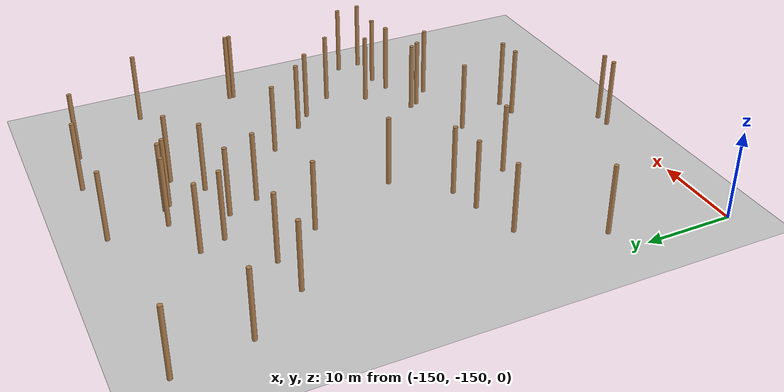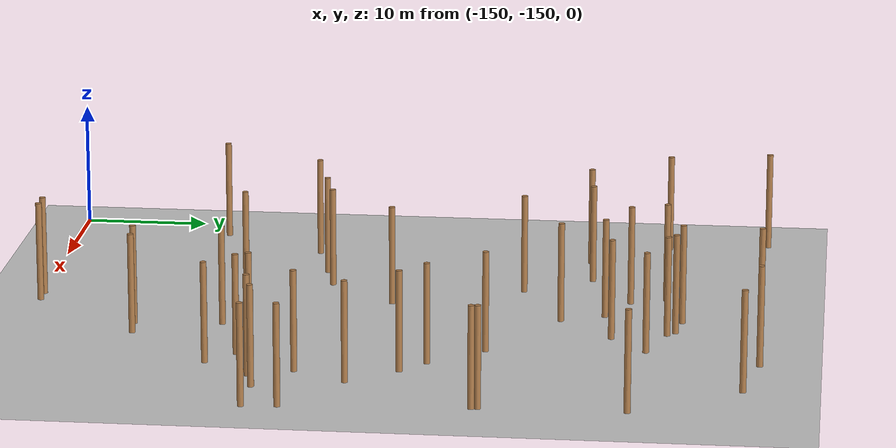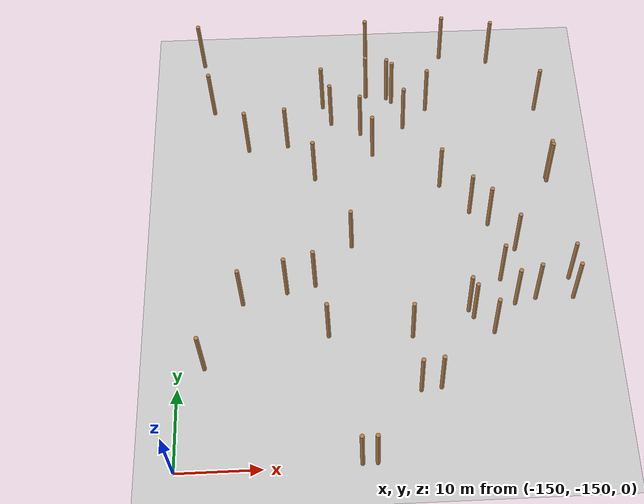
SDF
<sdf version="1.5">
 <world name="padure_tactica">
  <include><uri>model://sun</uri></include>
  <include><uri>model://ground_plane</uri></include>
  <model name="tree_22">
   <static>true</static>
   <pose>-142.58 -129.13 4.0 0 0 0</pose>
   <link name="link">
    <collision name="collision">
     <geometry><cylinder><radius>0.25</radius><length>8.0</length></cylinder></geometry>
    </collision>
    <visual name="visual">
     <geometry><cylinder><radius>0.25</radius><length>8.0</length></cylinder></geometry>
     <material>
      <script><uri>file://media/materials/scripts/gazebo.material</uri><name>Gazebo/Wood</name></script>
     </material>
    </visual>
   </link>
  </model>
  <model name="tree_45">
   <static>true</static>
   <pose>-132.42 -133.86 4.0 0 0 0</pose>
   <link name="link">
    <collision name="collision">
     <geometry><cylinder><radius>0.25</radius><length>8.0</length></cylinder></geometry>
    </collision>
    <visual name="visual">
     <geometry><cylinder><radius>0.25</radius><length>8.0</length></cylinder></geometry>
     <material>
      <script><uri>file://media/materials/scripts/gazebo.material</uri><name>Gazebo/Wood</name></script>
     </material>
    </visual>
   </link>
  </model>
  <model name="tree_58">
   <static>true</static>
   <pose>-107.53 -129.84 4.0 0 0 0</pose>
   <link name="link">
    <collision name="collision">
     <geometry><cylinder><radius>0.25</radius><length>8.0</length></cylinder></geometry>
    </collision>
    <visual name="visual">
     <geometry><cylinder><radius>0.25</radius><length>8.0</length></cylinder></geometry>
     <material>
      <script><uri>file://media/materials/scripts/gazebo.material</uri><name>Gazebo/Wood</name></script>
     </material>
    </visual>
   </link>
  </model>
  <model name="tree_72">
   <static>true</static>
   <pose>-123.33 -99.41 4.0 0 0 0</pose>
   <link name="link">
    <collision name="collision">
     <geometry><cylinder><radius>0.25</radius><length>8.0</length></cylinder></geometry>
    </collision>
    <visual name="visual">
     <geometry><cylinder><radius>0.25</radius><length>8.0</length></cylinder></geometry>
     <material>
      <script><uri>file://media/materials/scripts/gazebo.material</uri><name>Gazebo/Wood</name></script>
     </material>
    </visual>
   </link>
  </model>
  <model name="tree_81">
   <static>true</static>
   <pose>-115.68 -131.15 4.0 0 0 0</pose>
   <link name="link">
    <collision name="collision">
     <geometry><cylinder><radius>0.25</radius><length>8.0</length></cylinder></geometry>
    </collision>
    <visual name="visual">
     <geometry><cylinder><radius>0.25</radius><length>8.0</length></cylinder></geometry>
     <material>
      <script><uri>file://media/materials/scripts/gazebo.material</uri><name>Gazebo/Wood</name></script>
     </material>
    </visual>
   </link>
  </model>
  <model name="tree_100">
   <static>true</static>
   <pose>-122.54 -134.30 4.0 0 0 0</pose>
   <link name="link">
    <collision name="collision">
     <geometry><cylinder><radius>0.25</radius><length>8.0</length></cylinder></geometry>
    </collision>
    <visual name="visual">
     <geometry><cylinder><radius>0.25</radius><length>8.0</length></cylinder></geometry>
     <material>
      <script><uri>file://media/materials/scripts/gazebo.material</uri><name>Gazebo/Wood</name></script>
     </material>
    </visual>
   </link>
  </model>
  <model name="tree_202">
   <static>true</static>
   <pose>-122.04 -103.68 4.0 0 0 0</pose>
   <link name="link">
    <collision name="collision">
     <geometry><cylinder><radius>0.25</radius><length>8.0</length></cylinder></geometry>
    </collision>
    <visual name="visual">
     <geometry><cylinder><radius>0.25</radius><length>8.0</length></cylinder></geometry>
     <material>
      <script><uri>file://media/materials/scripts/gazebo.material</uri><name>Gazebo/Wood</name></script>
     </material>
    </visual>
   </link>
  </model>
  <model name="tree_204">
   <static>true</static>
   <pose>-117.88 -113.12 4.0 0 0 0</pose>
   <link name="link">
    <collision name="collision">
     <geometry><cylinder><radius>0.25</radius><length>8.0</length></cylinder></geometry>
    </collision>
    <visual name="visual">
     <geometry><cylinder><radius>0.25</radius><length>8.0</length></cylinder></geometry>
     <material>
      <script><uri>file://media/materials/scripts/gazebo.material</uri><name>Gazebo/Wood</name></script>
     </material>
    </visual>
   </link>
  </model>
  <model name="tree_260">
   <static>true</static>
   <pose>-146.66 -100.29 4.0 0 0 0</pose>
   <link name="link">
    <collision name="collision">
     <geometry><cylinder><radius>0.25</radius><length>8.0</length></cylinder></geometry>
    </collision>
    <visual name="visual">
     <geometry><cylinder><radius>0.25</radius><length>8.0</length></cylinder></geometry>
     <material>
      <script><uri>file://media/materials/scripts/gazebo.material</uri><name>Gazebo/Wood</name></script>
     </material>
    </visual>
   </link>
  </model>
  <model name="tree_269">
   <static>true</static>
   <pose>-126.65 -98.38 4.0 0 0 0</pose>
   <link name="link">
    <collision name="collision">
     <geometry><cylinder><radius>0.25</radius><length>8.0</length></cylinder></geometry>
    </collision>
    <visual name="visual">
     <geometry><cylinder><radius>0.25</radius><length>8.0</length></cylinder></geometry>
     <material>
      <script><uri>file://media/materials/scripts/gazebo.material</uri><name>Gazebo/Wood</name></script>
     </material>
    </visual>
   </link>
  </model>
  <model name="tree_348">
   <static>true</static>
   <pose>-137.29 -127.82 4.0 0 0 0</pose>
   <link name="link">
    <collision name="collision">
     <geometry><cylinder><radius>0.25</radius><length>8.0</length></cylinder></geometry>
    </collision>
    <visual name="visual">
     <geometry><cylinder><radius>0.25</radius><length>8.0</length></cylinder></geometry>
     <material>
      <script><uri>file://media/materials/scripts/gazebo.material</uri><name>Gazebo/Wood</name></script>
     </material>
    </visual>
   </link>
  </model>
  <model name="tree_358">
   <static>true</static>
   <pose>-114.44 -117.29 4.0 0 0 0</pose>
   <link name="link">
    <collision name="collision">
     <geometry><cylinder><radius>0.25</radius><length>8.0</length></cylinder></geometry>
    </collision>
    <visual name="visual">
     <geometry><cylinder><radius>0.25</radius><length>8.0</length></cylinder></geometry>
     <material>
      <script><uri>file://media/materials/scripts/gazebo.material</uri><name>Gazebo/Wood</name></script>
     </material>
    </visual>
   </link>
  </model>
  <model name="tree_375">
   <static>true</static>
   <pose>-103.20 -127.24 4.0 0 0 0</pose>
   <link name="link">
    <collision name="collision">
     <geometry><cylinder><radius>0.25</radius><length>8.0</length></cylinder></geometry>
    </collision>
    <visual name="visual">
     <geometry><cylinder><radius>0.25</radius><length>8.0</length></cylinder></geometry>
     <material>
      <script><uri>file://media/materials/scripts/gazebo.material</uri><name>Gazebo/Wood</name></script>
     </material>
    </visual>
   </link>
  </model>
  <model name="tree_397">
   <static>true</static>
   <pose>-119.63 -140.98 4.0 0 0 0</pose>
   <link name="link">
    <collision name="collision">
     <geometry><cylinder><radius>0.25</radius><length>8.0</length></cylinder></geometry>
    </collision>
    <visual name="visual">
     <geometry><cylinder><radius>0.25</radius><length>8.0</length></cylinder></geometry>
     <material>
      <script><uri>file://media/materials/scripts/gazebo.material</uri><name>Gazebo/Wood</name></script>
     </material>
    </visual>
   </link>
  </model>
  <model name="tree_403">
   <static>true</static>
   <pose>-121.98 -141.22 4.0 0 0 0</pose>
   <link name="link">
    <collision name="collision">
     <geometry><cylinder><radius>0.25</radius><length>8.0</length></cylinder></geometry>
    </collision>
    <visual name="visual">
     <geometry><cylinder><radius>0.25</radius><length>8.0</length></cylinder></geometry>
     <material>
      <script><uri>file://media/materials/scripts/gazebo.material</uri><name>Gazebo/Wood</name></script>
     </material>
    </visual>
   </link>
  </model>
  <model name="tree_419">
   <static>true</static>
   <pose>-112.88 -134.19 4.0 0 0 0</pose>
   <link name="link">
    <collision name="collision">
     <geometry><cylinder><radius>0.25</radius><length>8.0</length></cylinder></geometry>
    </collision>
    <visual name="visual">
     <geometry><cylinder><radius>0.25</radius><length>8.0</length></cylinder></geometry>
     <material>
      <script><uri>file://media/materials/scripts/gazebo.material</uri><name>Gazebo/Wood</name></script>
     </material>
    </visual>
   </link>
  </model>
  <model name="tree_433">
   <static>true</static>
   <pose>-104.26 -112.46 4.0 0 0 0</pose>
   <link name="link">
    <collision name="collision">
     <geometry><cylinder><radius>0.25</radius><length>8.0</length></cylinder></geometry>
    </collision>
    <visual name="visual">
     <geometry><cylinder><radius>0.25</radius><length>8.0</length></cylinder></geometry>
     <material>
      <script><uri>file://media/materials/scripts/gazebo.material</uri><name>Gazebo/Wood</name></script>
     </material>
    </visual>
   </link>
  </model>
  <model name="tree_448">
   <static>true</static>
   <pose>-112.30 -119.17 4.0 0 0 0</pose>
   <link name="link">
    <collision name="collision">
     <geometry><cylinder><radius>0.25</radius><length>8.0</length></cylinder></geometry>
    </collision>
    <visual name="visual">
     <geometry><cylinder><radius>0.25</radius><length>8.0</length></cylinder></geometry>
     <material>
      <script><uri>file://media/materials/scripts/gazebo.material</uri><name>Gazebo/Wood</name></script>
     </material>
    </visual>
   </link>
  </model>
  <model name="tree_500">
   <static>true</static>
   <pose>-104.19 -112.94 4.0 0 0 0</pose>
   <link name="link">
    <collision name="collision">
     <geometry><cylinder><radius>0.25</radius><length>8.0</length></cylinder></geometry>
    </collision>
    <visual name="visual">
     <geometry><cylinder><radius>0.25</radius><length>8.0</length></cylinder></geometry>
     <material>
      <script><uri>file://media/materials/scripts/gazebo.material</uri><name>Gazebo/Wood</name></script>
     </material>
    </visual>
   </link>
  </model>
  <model name="tree_548">
   <static>true</static>
   <pose>-127.36 -149.76 4.0 0 0 0</pose>
   <link name="link">
    <collision name="collision">
     <geometry><cylinder><radius>0.25</radius><length>8.0</length></cylinder></geometry>
    </collision>
    <visual name="visual">
     <geometry><cylinder><radius>0.25</radius><length>8.0</length></cylinder></geometry>
     <material>
      <script><uri>file://media/materials/scripts/gazebo.material</uri><name>Gazebo/Wood</name></script>
     </material>
    </visual>
   </link>
  </model>
  <model name="tree_552">
   <static>true</static>
   <pose>-148.22 -92.18 4.0 0 0 0</pose>
   <link name="link">
    <collision name="collision">
     <geometry><cylinder><radius>0.25</radius><length>8.0</length></cylinder></geometry>
    </collision>
    <visual name="visual">
     <geometry><cylinder><radius>0.25</radius><length>8.0</length></cylinder></geometry>
     <material>
      <script><uri>file://media/materials/scripts/gazebo.material</uri><name>Gazebo/Wood</name></script>
     </material>
    </visual>
   </link>
  </model>
  <model name="tree_574">
   <static>true</static>
   <pose>-109.31 -122.97 4.0 0 0 0</pose>
   <link name="link">
    <collision name="collision">
     <geometry><cylinder><radius>0.25</radius><length>8.0</length></cylinder></geometry>
    </collision>
    <visual name="visual">
     <geometry><cylinder><radius>0.25</radius><length>8.0</length></cylinder></geometry>
     <material>
      <script><uri>file://media/materials/scripts/gazebo.material</uri><name>Gazebo/Wood</name></script>
     </material>
    </visual>
   </link>
  </model>
  <model name="tree_590">
   <static>true</static>
   <pose>-111.50 -127.12 4.0 0 0 0</pose>
   <link name="link">
    <collision name="collision">
     <geometry><cylinder><radius>0.25</radius><length>8.0</length></cylinder></geometry>
    </collision>
    <visual name="visual">
     <geometry><cylinder><radius>0.25</radius><length>8.0</length></cylinder></geometry>
     <material>
      <script><uri>file://media/materials/scripts/gazebo.material</uri><name>Gazebo/Wood</name></script>
     </material>
    </visual>
   </link>
  </model>
  <model name="tree_729">
   <static>true</static>
   <pose>-146.93 -137.45 4.0 0 0 0</pose>
   <link name="link">
    <collision name="collision">
     <geometry><cylinder><radius>0.25</radius><length>8.0</length></cylinder></geometry>
    </collision>
    <visual name="visual">
     <geometry><cylinder><radius>0.25</radius><length>8.0</length></cylinder></geometry>
     <material>
      <script><uri>file://media/materials/scripts/gazebo.material</uri><name>Gazebo/Wood</name></script>
     </material>
    </visual>
   </link>
  </model>
  <model name="tree_735">
   <static>true</static>
   <pose>-104.51 -101.43 4.0 0 0 0</pose>
   <link name="link">
    <collision name="collision">
     <geometry><cylinder><radius>0.25</radius><length>8.0</length></cylinder></geometry>
    </collision>
    <visual name="visual">
     <geometry><cylinder><radius>0.25</radius><length>8.0</length></cylinder></geometry>
     <material>
      <script><uri>file://media/materials/scripts/gazebo.material</uri><name>Gazebo/Wood</name></script>
     </material>
    </visual>
   </link>
  </model>
  <model name="tree_794">
   <static>true</static>
   <pose>-127.60 -104.52 4.0 0 0 0</pose>
   <link name="link">
    <collision name="collision">
     <geometry><cylinder><radius>0.25</radius><length>8.0</length></cylinder></geometry>
    </collision>
    <visual name="visual">
     <geometry><cylinder><radius>0.25</radius><length>8.0</length></cylinder></geometry>
     <material>
      <script><uri>file://media/materials/scripts/gazebo.material</uri><name>Gazebo/Wood</name></script>
     </material>
    </visual>
   </link>
  </model>
  <model name="tree_797">
   <static>true</static>
   <pose>-110.06 -130.48 4.0 0 0 0</pose>
   <link name="link">
    <collision name="collision">
     <geometry><cylinder><radius>0.25</radius><length>8.0</length></cylinder></geometry>
    </collision>
    <visual name="visual">
     <geometry><cylinder><radius>0.25</radius><length>8.0</length></cylinder></geometry>
     <material>
      <script><uri>file://media/materials/scripts/gazebo.material</uri><name>Gazebo/Wood</name></script>
     </material>
    </visual>
   </link>
  </model>
  <model name="tree_800">
   <static>true</static>
   <pose>-102.99 -129.93 4.0 0 0 0</pose>
   <link name="link">
    <collision name="collision">
     <geometry><cylinder><radius>0.25</radius><length>8.0</length></cylinder></geometry>
    </collision>
    <visual name="visual">
     <geometry><cylinder><radius>0.25</radius><length>8.0</length></cylinder></geometry>
     <material>
      <script><uri>file://media/materials/scripts/gazebo.material</uri><name>Gazebo/Wood</name></script>
     </material>
    </visual>
   </link>
  </model>
  <model name="tree_839">
   <static>true</static>
   <pose>-131.35 -102.70 4.0 0 0 0</pose>
   <link name="link">
    <collision name="collision">
     <geometry><cylinder><radius>0.25</radius><length>8.0</length></cylinder></geometry>
    </collision>
    <visual name="visual">
     <geometry><cylinder><radius>0.25</radius><length>8.0</length></cylinder></geometry>
     <material>
      <script><uri>file://media/materials/scripts/gazebo.material</uri><name>Gazebo/Wood</name></script>
     </material>
    </visual>
   </link>
  </model>
  <model name="tree_877">
   <static>true</static>
   <pose>-115.15 -132.10 4.0 0 0 0</pose>
   <link name="link">
    <collision name="collision">
     <geometry><cylinder><radius>0.25</radius><length>8.0</length></cylinder></geometry>
    </collision>
    <visual name="visual">
     <geometry><cylinder><radius>0.25</radius><length>8.0</length></cylinder></geometry>
     <material>
      <script><uri>file://media/materials/scripts/gazebo.material</uri><name>Gazebo/Wood</name></script>
     </material>
    </visual>
   </link>
  </model>
  <model name="tree_883">
   <static>true</static>
   <pose>-116.43 -92.03 4.0 0 0 0</pose>
   <link name="link">
    <collision name="collision">
     <geometry><cylinder><radius>0.25</radius><length>8.0</length></cylinder></geometry>
    </collision>
    <visual name="visual">
     <geometry><cylinder><radius>0.25</radius><length>8.0</length></cylinder></geometry>
     <material>
      <script><uri>file://media/materials/scripts/gazebo.material</uri><name>Gazebo/Wood</name></script>
     </material>
    </visual>
   </link>
  </model>
  <model name="tree_950">
   <static>true</static>
   <pose>-129.06 -149.78 4.0 0 0 0</pose>
   <link name="link">
    <collision name="collision">
     <geometry><cylinder><radius>0.25</radius><length>8.0</length></cylinder></geometry>
    </collision>
    <visual name="visual">
     <geometry><cylinder><radius>0.25</radius><length>8.0</length></cylinder></geometry>
     <material>
      <script><uri>file://media/materials/scripts/gazebo.material</uri><name>Gazebo/Wood</name></script>
     </material>
    </visual>
   </link>
  </model>
  <model name="tree_951">
   <static>true</static>
   <pose>-142.08 -106.56 4.0 0 0 0</pose>
   <link name="link">
    <collision name="collision">
     <geometry><cylinder><radius>0.25</radius><length>8.0</length></cylinder></geometry>
    </collision>
    <visual name="visual">
     <geometry><cylinder><radius>0.25</radius><length>8.0</length></cylinder></geometry>
     <material>
      <script><uri>file://media/materials/scripts/gazebo.material</uri><name>Gazebo/Wood</name></script>
     </material>
    </visual>
   </link>
  </model>
  <model name="tree_975">
   <static>true</static>
   <pose>-118.91 -100.83 4.0 0 0 0</pose>
   <link name="link">
    <collision name="collision">
     <geometry><cylinder><radius>0.25</radius><length>8.0</length></cylinder></geometry>
    </collision>
    <visual name="visual">
     <geometry><cylinder><radius>0.25</radius><length>8.0</length></cylinder></geometry>
     <material>
      <script><uri>file://media/materials/scripts/gazebo.material</uri><name>Gazebo/Wood</name></script>
     </material>
    </visual>
   </link>
  </model>
  <model name="tree_981">
   <static>true</static>
   <pose>-110.13 -93.11 4.0 0 0 0</pose>
   <link name="link">
    <collision name="collision">
     <geometry><cylinder><radius>0.25</radius><length>8.0</length></cylinder></geometry>
    </collision>
    <visual name="visual">
     <geometry><cylinder><radius>0.25</radius><length>8.0</length></cylinder></geometry>
     <material>
      <script><uri>file://media/materials/scripts/gazebo.material</uri><name>Gazebo/Wood</name></script>
     </material>
    </visual>
   </link>
  </model>
  <model name="tree_995">
   <static>true</static>
   <pose>-126.17 -107.92 4.0 0 0 0</pose>
   <link name="link">
    <collision name="collision">
     <geometry><cylinder><radius>0.25</radius><length>8.0</length></cylinder></geometry>
    </collision>
    <visual name="visual">
     <geometry><cylinder><radius>0.25</radius><length>8.0</length></cylinder></geometry>
     <material>
      <script><uri>file://media/materials/scripts/gazebo.material</uri><name>Gazebo/Wood</name></script>
     </material>
    </visual>
   </link>
  </model>
  <model name="tree_1013">
   <static>true</static>
   <pose>-133.88 -126.97 4.0 0 0 0</pose>
   <link name="link">
    <collision name="collision">
     <geometry><cylinder><radius>0.25</radius><length>8.0</length></cylinder></geometry>
    </collision>
    <visual name="visual">
     <geometry><cylinder><radius>0.25</radius><length>8.0</length></cylinder></geometry>
     <material>
      <script><uri>file://media/materials/scripts/gazebo.material</uri><name>Gazebo/Wood</name></script>
     </material>
    </visual>
   </link>
  </model>
  <model name="tree_1077">
   <static>true</static>
   <pose>-126.46 -92.22 4.0 0 0 0</pose>
   <link name="link">
    <collision name="collision">
     <geometry><cylinder><radius>0.25</radius><length>8.0</length></cylinder></geometry>
    </collision>
    <visual name="visual">
     <geometry><cylinder><radius>0.25</radius><length>8.0</length></cylinder></geometry>
     <material>
      <script><uri>file://media/materials/scripts/gazebo.material</uri><name>Gazebo/Wood</name></script>
     </material>
    </visual>
   </link>
  </model>
  <model name="tree_1078">
   <static>true</static>
   <pose>-129.32 -121.64 4.0 0 0 0</pose>
   <link name="link">
    <collision name="collision">
     <geometry><cylinder><radius>0.25</radius><length>8.0</length></cylinder></geometry>
    </collision>
    <visual name="visual">
     <geometry><cylinder><radius>0.25</radius><length>8.0</length></cylinder></geometry>
     <material>
      <script><uri>file://media/materials/scripts/gazebo.material</uri><name>Gazebo/Wood</name></script>
     </material>
    </visual>
   </link>
  </model>
  <model name="tree_1142">
   <static>true</static>
   <pose>-133.64 -111.42 4.0 0 0 0</pose>
   <link name="link">
    <collision name="collision">
     <geometry><cylinder><radius>0.25</radius><length>8.0</length></cylinder></geometry>
    </collision>
    <visual name="visual">
     <geometry><cylinder><radius>0.25</radius><length>8.0</length></cylinder></geometry>
     <material>
      <script><uri>file://media/materials/scripts/gazebo.material</uri><name>Gazebo/Wood</name></script>
     </material>
    </visual>
   </link>
  </model>
  <model name="tree_1144">
   <static>true</static>
   <pose>-137.08 -106.10 4.0 0 0 0</pose>
   <link name="link">
    <collision name="collision">
     <geometry><cylinder><radius>0.25</radius><length>8.0</length></cylinder></geometry>
    </collision>
    <visual name="visual">
     <geometry><cylinder><radius>0.25</radius><length>8.0</length></cylinder></geometry>
     <material>
      <script><uri>file://media/materials/scripts/gazebo.material</uri><name>Gazebo/Wood</name></script>
     </material>
    </visual>
   </link>
  </model>
  <model name="tree_1155">
   <static>true</static>
   <pose>-123.96 -98.79 4.0 0 0 0</pose>
   <link name="link">
    <collision name="collision">
     <geometry><cylinder><radius>0.25</radius><length>8.0</length></cylinder></geometry>
    </collision>
    <visual name="visual">
     <geometry><cylinder><radius>0.25</radius><length>8.0</length></cylinder></geometry>
     <material>
      <script><uri>file://media/materials/scripts/gazebo.material</uri><name>Gazebo/Wood</name></script>
     </material>
    </visual>
   </link>
  </model>
  <model name="tree_1172">
   <static>true</static>
   <pose>-132.40 -99.90 4.0 0 0 0</pose>
   <link name="link">
    <collision name="collision">
     <geometry><cylinder><radius>0.25</radius><length>8.0</length></cylinder></geometry>
    </collision>
    <visual name="visual">
     <geometry><cylinder><radius>0.25</radius><length>8.0</length></cylinder></geometry>
     <material>
      <script><uri>file://media/materials/scripts/gazebo.material</uri><name>Gazebo/Wood</name></script>
     </material>
    </visual>
   </link>
  </model>
 </world>
</sdf>
